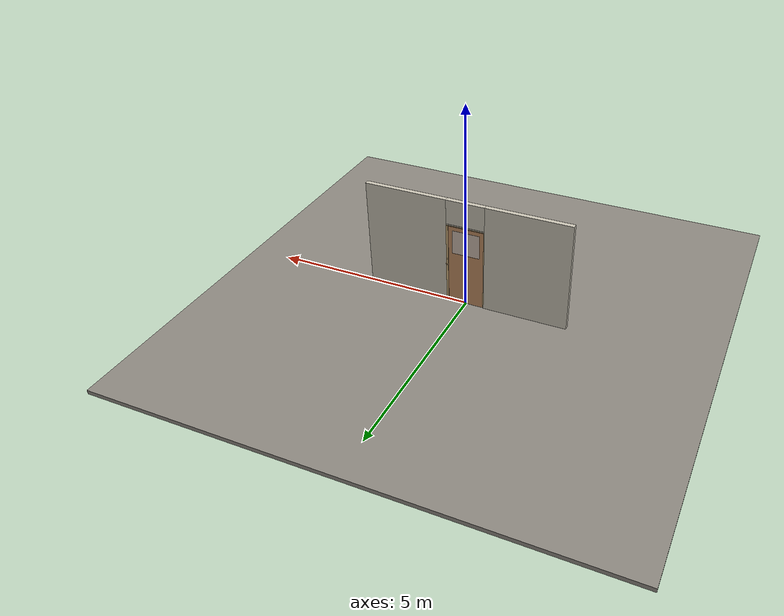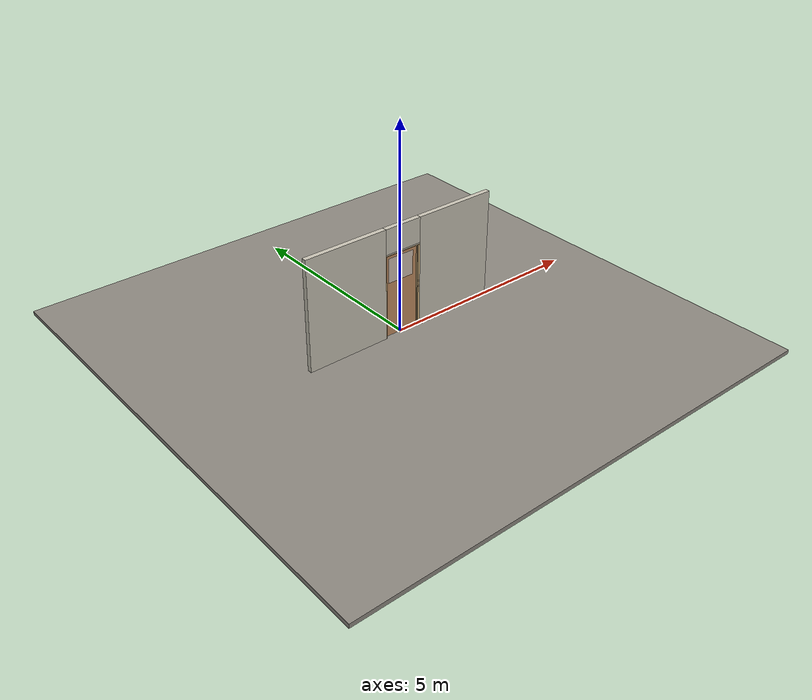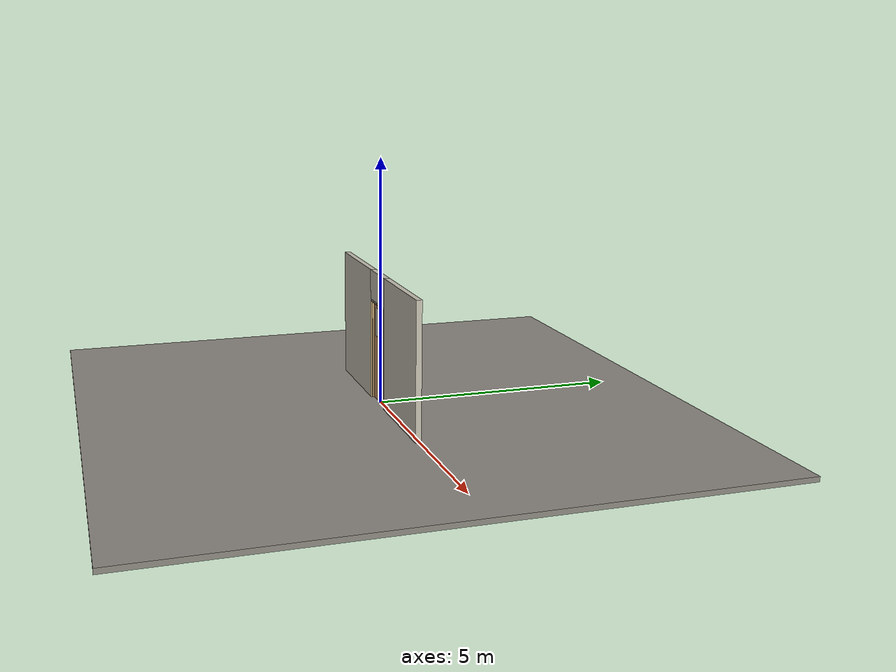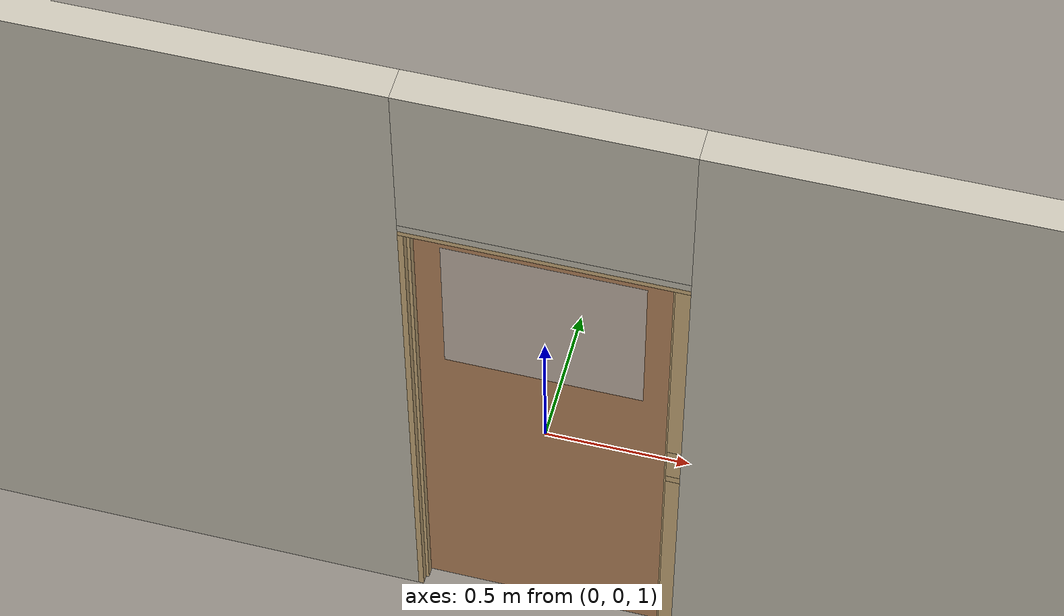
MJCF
<?xml version="1.0" ?>
<mujoco model="db0464_swing_single_minimal">
  <compiler angle="radian" meshdir="../../hardware" texturedir="../../textures" autolimits="true" inertiafromgeom="false"/>
  <option timestep="0.002" integrator="implicitfast" cone="elliptic" impratio="10" noslip_iterations="3">
    <flag multiccd="enable"/>
  </option>
  <size memory="16M"/>
  <default>
    <geom condim="4" solref="0.005 1" solimp="0.95 0.99 0.001"/>
    <joint solreflimit="0.005 1" solimplimit="0.95 0.99 0.001"/>
    <tendon solreflimit="0.005 1"/>
    <equality solref="0.002 1"/>
  </default>
  <visual>
    <headlight ambient="0.4 0.4 0.4" diffuse="0.7 0.7 0.7" specular="0.2 0.2 0.2"/>
    <quality shadowsize="4096"/>
    <map znear="0.01" zfar="60"/>
  </visual>
  <asset>
    <material name="mat_floor" rgba="0.55 0.53 0.5 1" specular="0.2" shininess="0.15" reflectance="0"/>
    <material name="mat_wall" rgba="0.78 0.76 0.7 1" specular="0.2" shininess="0.1" reflectance="0"/>
    <material name="mat_leaf" rgba="0.75 0.55 0.38 1" specular="0.2" shininess="0.45" reflectance="0"/>
    <material name="mat_glass" rgba="0.9 0.93 0.95 0.6" specular="0.2" shininess="0.5" reflectance="0.1"/>
    <material name="mat_hinge" rgba="0.45 0.3 0.22 1" specular="0.5" shininess="0.1" reflectance="0.2"/>
    <material name="mat_op_nickel_satin" rgba="0.72 0.7 0.66 1" specular="0.8" shininess="0.65" reflectance="0.4"/>
    <material name="mat_trim" rgba="0.85 0.66 0.3 1" specular="0.8" shininess="0.75" reflectance="0.4"/>
    <material name="mat_keypad" rgba="0.05 0.05 0.05 1" specular="0.38" shininess="0.3" reflectance="0.12"/>
    <material name="mat_key" rgba="0.85 0.85 0.82 1" specular="0.2" shininess="0.5" reflectance="0"/>
    <material name="mat_bolt" rgba="0.75 0.76 0.77 1" specular="0.8" shininess="0.65" reflectance="0.4"/>
    <material name="mat_deadbolt" rgba="0.85 0.66 0.3 1" specular="0.8" shininess="0.75" reflectance="0.4"/>
    <material name="mat_frame" rgba="0.82 0.7 0.5 1" specular="0.2" shininess="0.45" reflectance="0"/>
    <material name="mat_seal" rgba="0.1 0.1 0.1 1" specular="0.2" shininess="0.1" reflectance="0"/>
    <material name="mat_peephole" rgba="0.85 0.66 0.3 1" specular="0.8" shininess="0.75" reflectance="0.4"/>
    <material name="mat_numbers" rgba="0.05 0.05 0.05 1" specular="0.38" shininess="0.3" reflectance="0.12"/>
    <material name="mat_drip" rgba="0.8 0.81 0.83 1" specular="0.8" shininess="0.6" reflectance="0.4"/>
    <texture name="skybox" type="skybox" builtin="gradient" rgb1="0.6 0.7 0.85" rgb2="0.9 0.92 0.95" width="256" height="256"/>
  </asset>
  <worldbody>
    <light name="sun" pos="1.5 -2.5 4" dir="-0.3 0.5 -0.8" directional="true" diffuse="0.8 0.8 0.8" specular="0.3 0.3 0.3" castshadow="true"/>
    <light name="fill" pos="-1.5 2.5 3" dir="0.3 -0.5 -0.7" directional="true" diffuse="0.35 0.35 0.4" castshadow="false"/>
    <camera name="robot_view" pos="0 -2.570688 1.734312" xyaxes="1 0 0 0 0.26963 0.962964" fovy="52"/>
    <camera name="far_view" pos="0 2.513687 1.734312" xyaxes="-1 0 0 0 -0.26963 0.962964" fovy="52"/>
    <camera name="iso" pos="1.932062 -2.163938 2.141063" xyaxes="0.741536 0.670913 0 -0.242917 0.268487 0.932151" fovy="46"/>
    <camera name="detail_handle" pos="0.508 -0.8285 1.296" xyaxes="0.97561 0.219512 0 -0.070934 0.315262 0.94635" fovy="38"/>
    <geom name="floor" type="box" size="6 6 0.05" pos="0 0 -0.05" material="mat_floor" group="0" contype="1" conaffinity="1" friction="0.8 0.005 0.0001" density="2400"/>
    <geom name="wall_left" type="box" size="1.0225 0.0575 1.35" pos="-1.4775 -0.0285 1.35" material="mat_wall" group="0" contype="1" conaffinity="1" friction="0.6 0.005 0.0001" density="800"/>
    <geom name="wall_right" type="box" size="1.0075 0.0575 1.35" pos="1.4925 -0.0285 1.35" material="mat_wall" group="0" contype="1" conaffinity="1" friction="0.6 0.005 0.0001" density="800"/>
    <geom name="wall_header" type="box" size="0.47 0.0575 0.303" pos="0.015 -0.0285 2.397" material="mat_wall" group="0" contype="1" conaffinity="1" friction="0.6 0.005 0.0001" density="800"/>
    <geom name="jamb_hinge" type="box" size="0.0095 0.0575 1.0225" pos="-0.4455 -0.0285 1.0225" material="mat_frame" group="0" contype="1" conaffinity="1" friction="0.6 0.005 0.0001" density="400"/>
    <geom name="strike_1016_wall_n" type="box" size="0.0245 0.03975 0.015" pos="0.4605 -0.04625 1.016" material="mat_frame" group="0" contype="1" conaffinity="1" friction="0.6 0.005 0.0001" density="400"/>
    <geom name="strike_1016_wall_p" type="box" size="0.0245 0.008 0.015" pos="0.4605 0.0145 1.016" material="mat_frame" group="0" contype="1" conaffinity="1" friction="0.6 0.005 0.0001" density="400"/>
    <geom name="strike_1016_ramp" type="box" size="0.0245 0.016771 0.015" pos="0.465413 0.026543 1.016" quat="0.973249 0 0 -0.229753" material="mat_frame" group="0" contype="1" conaffinity="1" friction="0.12 0.005 0.0001" density="400"/>
    <geom name="strike_1016_back" type="box" size="0.0155 0.0065 0.015" pos="0.4695 0 1.016" material="mat_frame" group="0" contype="1" conaffinity="1" friction="0.6 0.005 0.0001" density="400"/>
    <geom name="strike_1156_wall_n" type="box" size="0.0245 0.03825 0.0155" pos="0.4605 -0.04775 1.156" material="mat_frame" group="0" contype="1" conaffinity="1" friction="0.6 0.005 0.0001" density="400"/>
    <geom name="strike_1156_wall_p" type="box" size="0.0245 0.00975 0.0155" pos="0.4605 0.01925 1.156" material="mat_frame" group="0" contype="1" conaffinity="1" friction="0.6 0.005 0.0001" density="400"/>
    <geom name="strike_1156_back" type="box" size="0.0098 0.0095 0.0155" pos="0.4752 0 1.156" material="mat_frame" group="0" contype="1" conaffinity="1" friction="0.6 0.005 0.0001" density="400"/>
    <geom name="jamb_strike_0" type="box" size="0.0245 0.0575 0.5005" pos="0.4605 -0.0285 0.5005" material="mat_frame" group="0" contype="1" conaffinity="1" friction="0.6 0.005 0.0001" density="400"/>
    <geom name="jamb_strike_1" type="box" size="0.0245 0.0575 0.05475" pos="0.4605 -0.0285 1.08575" material="mat_frame" group="0" contype="1" conaffinity="1" friction="0.6 0.005 0.0001" density="400"/>
    <geom name="jamb_strike_2" type="box" size="0.0245 0.0575 0.43675" pos="0.4605 -0.0285 1.60825" material="mat_frame" group="0" contype="1" conaffinity="1" friction="0.6 0.005 0.0001" density="400"/>
    <geom name="jamb_head" type="box" size="0.47 0.0575 0.0095" pos="0.015 -0.0285 2.0545" material="mat_frame" group="0" contype="1" conaffinity="1" friction="0.6 0.005 0.0001" density="400"/>
    <geom name="head_stud" type="box" size="0.47 0.0575 0.015" pos="0.015 -0.0285 2.079" material="mat_wall" group="0" contype="1" conaffinity="1" friction="0.6 0.005 0.0001" density="500"/>
    <geom name="stop_hinge" type="box" size="0.0055 0.016 1.0225" pos="-0.4305 -0.0385 1.0225" material="mat_frame" group="0" contype="1" conaffinity="1" friction="0.6 0.005 0.0001" density="400"/>
    <geom name="stop_strike" type="box" size="0.0055 0.016 1.0225" pos="0.4305 -0.0385 1.0225" material="mat_frame" group="0" contype="1" conaffinity="1" friction="0.6 0.005 0.0001" density="400"/>
    <geom name="stop_head" type="box" size="0.436 0.016 0.0055" pos="0 -0.0385 2.0395" material="mat_frame" group="0" contype="1" conaffinity="1" friction="0.6 0.005 0.0001" density="400"/>
    <site name="approach_point" pos="0 -1.5 0" quat="1 0 0 0" size="0.05" rgba="0.2 0.9 0.2 0.5" group="4"/>
    <site name="goal_point" pos="0 1.5 0" quat="1 0 0 0" size="0.05" rgba="0.2 0.9 0.2 0.5" group="4"/>
    <site name="door_plane_center" pos="0 0 1.0225" quat="1 0 0 0" size="0.02" rgba="0.2 0.9 0.2 0.5" group="4"/>
    <body name="leaf" pos="-0.436 0 0">
      <inertial pos="0.435 0 1.025372" mass="39.889535" quat="-0.5 0.5 0.5 0.5" diaginertia="2.487296797 13.733394815 16.207820013"/>
      <joint name="leaf_hinge" type="hinge" axis="0 0 1" pos="0.003 0.029 0" limited="true" range="0 1.570796" solreflimit="0.02 1" damping="0.254501" frictionloss="5.41993" armature="0.02"/>
      <geom name="leaf_slab" type="box" size="0.432 0.022 1.016" pos="0.435 0 1.025" material="mat_leaf" group="0" contype="1" conaffinity="1" friction="0.35 0.005 0.0001" density="1"/>
      <geom name="leaf_glass_0" type="box" size="0.33696 0.0228 0.298704" pos="0.435 0 1.640696" material="mat_glass" group="1" contype="0" conaffinity="0" density="1"/>
      <site name="leaf_edge_mid" pos="0.867 0 1.016" quat="1 0 0 0" size="0.02" rgba="0.2 0.9 0.2 0.5" group="4"/>
      <body name="leaf_handle" pos="0.812 0 1.016">
        <inertial pos="0 0 0" mass="0.01" quat="1 0 0 0" diaginertia="0.000001 0.000001 0.000001"/>
        <joint name="leaf_handle_hinge" type="hinge" axis="0 -1 0" limited="true" range="0 0.87" damping="0.141426" frictionloss="0.048" stiffness="0.5" springref="-0.5" armature="0.01"/>
      </body>
      <body name="leaf_latch_bolt" pos="0.867 0 1.016">
        <inertial pos="-0.008 0 0" mass="0.027149" quat="0 0 0.707107 0.707107" diaginertia="0.000000328 0.000003943 0.000003943"/>
        <joint name="leaf_latch_bolt_slide" type="slide" axis="-1 0 0" limited="true" range="0 0.014" damping="2" frictionloss="0.3" stiffness="400" springref="-0.01" armature="0.1"/>
        <geom name="leaf_latch_bolt_capsule" type="capsule" size="0.005 0.017" pos="-0.008 0 0" quat="0.707107 0 0.707107 0" material="mat_bolt" group="0" contype="1" conaffinity="1" friction="0.2 0.005 0.0001" density="8500"/>
      </body>
    </body>
  </worldbody>
  <tendon>
    <fixed name="leaf_latch_bolt_coupling" limited="true" range="0 10">
      <joint joint="leaf_latch_bolt_slide" coef="1"/>
      <joint joint="leaf_handle_hinge" coef="-0.017284"/>
    </fixed>
  </tendon>
  <sensor>
    <jointpos name="leaf_hinge_pos" joint="leaf_hinge"/>
    <jointvel name="leaf_hinge_vel" joint="leaf_hinge"/>
    <jointpos name="leaf_handle_hinge_pos" joint="leaf_handle_hinge"/>
    <jointvel name="leaf_handle_hinge_vel" joint="leaf_handle_hinge"/>
    <jointpos name="leaf_latch_bolt_slide_pos" joint="leaf_latch_bolt_slide"/>
    <jointvel name="leaf_latch_bolt_slide_vel" joint="leaf_latch_bolt_slide"/>
  </sensor>
</mujoco>
